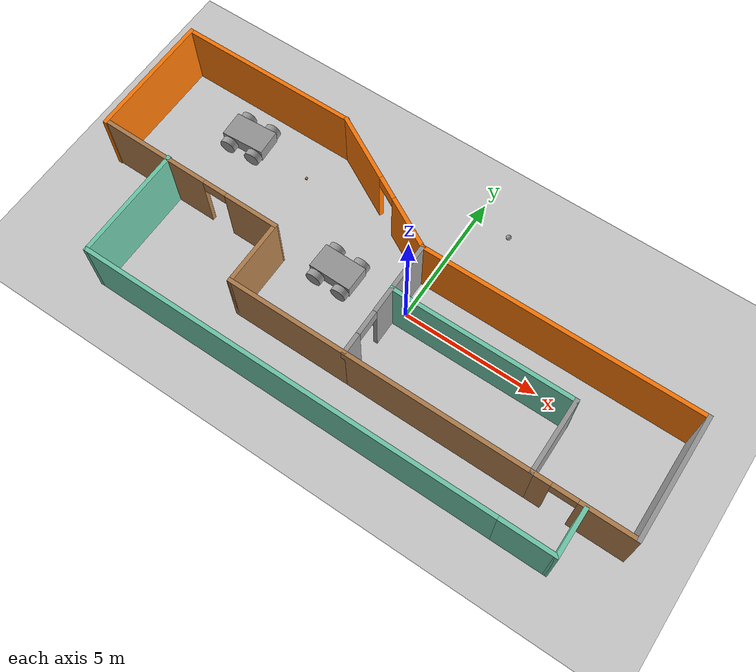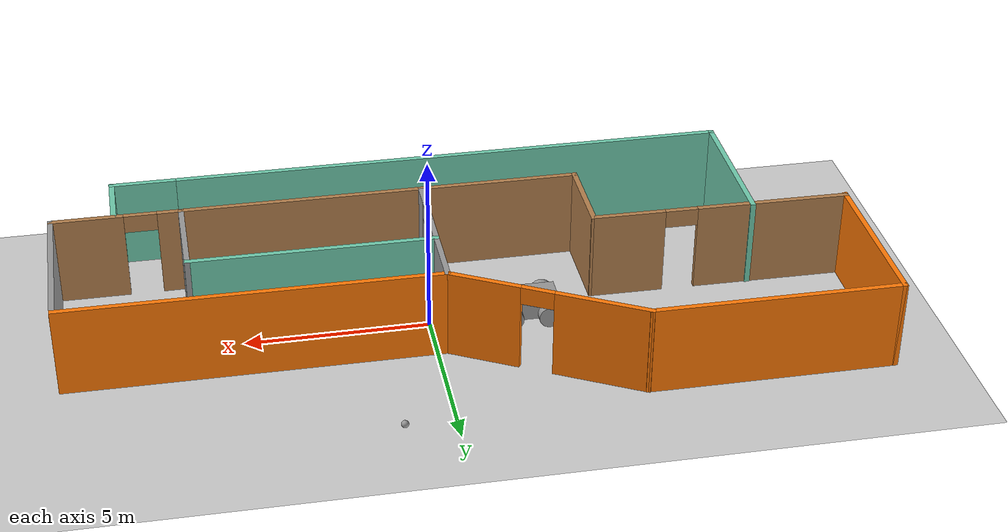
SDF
<sdf version="1.6">
 <world name="default">
  <plugin name="hello" filename="libhello.so"/>
  <light name="sun" type="directional">
   <pose>0 0 10 0 -0 0</pose>
   <diffuse>0.8 0.8 0.8 1</diffuse>
   <specular>0.2 0.2 0.2 1</specular>
   <attenuation>
    <range>1000</range>
    <constant>0.9</constant>
    <linear>0.01</linear>
    <quadratic>0.001</quadratic>
   </attenuation>
   <direction>-0.5 0.1 -0.9</direction>
  </light>
  <model name="ground_plane">
   <static>1</static>
   <link name="link">
    <collision name="collision">
     <geometry><plane><normal>0 0 1</normal><size>100 100</size></plane></geometry>
     <surface>
      <contact><collide_bitmask>65535</collide_bitmask></contact>
      <friction><ode><mu>100</mu><mu2>50</mu2></ode></friction>
     </surface>
    </collision>
    <visual name="visual">
     <cast_shadows>0</cast_shadows>
     <geometry><plane><normal>0 0 1</normal><size>100 100</size></plane></geometry>
     <material>
      <script><uri>file://media/materials/scripts/gazebo.material</uri><name>Gazebo/Grey</name></script>
     </material>
    </visual>
   </link>
  </model>
  <gravity>0 0 -9.8</gravity>
  <magnetic_field>6e-06 2.3e-05 -4.2e-05</magnetic_field>
  <atmosphere type="adiabatic"/>
  <physics name="default_physics" default="0" type="ode">
   <max_step_size>0.001</max_step_size>
   <real_time_factor>1</real_time_factor>
   <real_time_update_rate>1000</real_time_update_rate>
  </physics>
  <scene><ambient>0.4 0.4 0.4 1</ambient><background>0.7 0.7 0.7 1</background><shadows>1</shadows></scene>
  <spherical_coordinates>
   <surface_model>EARTH_WGS84</surface_model>
   <latitude_deg>0</latitude_deg>
   <longitude_deg>0</longitude_deg>
   <elevation>0</elevation>
   <heading_deg>0</heading_deg>
  </spherical_coordinates>
  <model name="mybuilding">
   <pose>-0.9582 -0.36188 0 0 -0 0</pose>
   <link name="Wall_0">
    <collision name="Wall_0_Collision">
     <geometry><box><size>4.75 0.15 2.5</size></box></geometry>
     <pose>0 0 1.25 0 -0 0</pose>
    </collision>
    <visual name="Wall_0_Visual">
     <pose>0 0 1.25 0 -0 0</pose>
     <geometry><box><size>4.75 0.15 2.5</size></box></geometry>
     <material>
      <script><uri>file://media/materials/scripts/gazebo.material</uri><name>Gazebo/Grey</name></script>
      <ambient>0.996078 0.47451 0.0196078 1</ambient>
     </material>
     <meta><layer>0</layer></meta>
    </visual>
    <pose>-10.7747 2.01571 0 0 0 -1.5708</pose>
   </link>
   <link name="Wall_1">
    <pose>-7.22475 -0.28429 0 0 0 -0.008617</pose>
    <visual name="Wall_1_Visual_0">
     <pose>-1.48771 0 1.25 0 -0 0</pose>
     <geometry><box><size>4.27457 0.15 2.5</size></box></geometry>
     <material>
      <script><uri>file://media/materials/scripts/gazebo.material</uri><name>Gazebo/Wood</name></script>
      <ambient>1 1 1 1</ambient>
     </material>
     <meta><layer>0</layer></meta>
    </visual>
    <collision name="Wall_1_Collision_0">
     <geometry><box><size>4.27457 0.15 2.5</size></box></geometry>
     <pose>-1.48771 0 1.25 0 -0 0</pose>
    </collision>
    <visual name="Wall_1_Visual_1">
     <pose>2.58729 0 1.25 0 -0 0</pose>
     <geometry><box><size>2.07543 0.15 2.5</size></box></geometry>
     <material>
      <script><uri>file://media/materials/scripts/gazebo.material</uri><name>Gazebo/Wood</name></script>
      <ambient>1 1 1 1</ambient>
     </material>
     <meta><layer>0</layer></meta>
    </visual>
    <collision name="Wall_1_Collision_1">
     <geometry><box><size>2.07543 0.15 2.5</size></box></geometry>
     <pose>2.58729 0 1.25 0 -0 0</pose>
    </collision>
    <visual name="Wall_1_Visual_2">
     <pose>1.09957 0 2.25 0 -0 0</pose>
     <geometry><box><size>0.9 0.15 0.5</size></box></geometry>
     <material>
      <script><uri>file://media/materials/scripts/gazebo.material</uri><name>Gazebo/Wood</name></script>
      <ambient>1 1 1 1</ambient>
     </material>
     <meta><layer>0</layer></meta>
    </visual>
    <collision name="Wall_1_Collision_2">
     <geometry><box><size>0.9 0.15 0.5</size></box></geometry>
     <pose>1.09957 0 2.25 0 -0 0</pose>
    </collision>
   </link>
   <link name="Wall_10">
    <collision name="Wall_10_Collision">
     <geometry><box><size>6.75 0.15 2.5</size></box></geometry>
     <pose>0 0 1.25 0 -0 0</pose>
    </collision>
    <visual name="Wall_10_Visual">
     <pose>0 0 1.25 0 -0 0</pose>
     <geometry><box><size>6.75 0.15 2.5</size></box></geometry>
     <material>
      <script><uri>file://media/materials/scripts/gazebo.material</uri><name>Gazebo/Wood</name></script>
      <ambient>1 1 1 1</ambient>
     </material>
     <meta><layer>0</layer></meta>
    </visual>
    <pose>3.97526 -2.66488 0 0 -0 0</pose>
   </link>
   <link name="Wall_11">
    <collision name="Wall_11_Collision">
     <geometry><box><size>2.75 0.15 2.5</size></box></geometry>
     <pose>0 0 1.25 0 -0 0</pose>
    </collision>
    <visual name="Wall_11_Visual">
     <pose>0 0 1.25 0 -0 0</pose>
     <geometry><box><size>2.75 0.15 2.5</size></box></geometry>
     <material>
      <script><uri>file://media/materials/scripts/gazebo.material</uri><name>Gazebo/Grey</name></script>
      <ambient>1 1 1 1</ambient>
     </material>
     <meta><layer>0</layer></meta>
    </visual>
    <pose>7.27525 -1.36488 0 0 -0 1.5708</pose>
   </link>
   <link name="Wall_12">
    <collision name="Wall_12_Collision">
     <geometry><box><size>6.75 0.15 2.5</size></box></geometry>
     <pose>0 0 1.25 0 -0 0</pose>
    </collision>
    <visual name="Wall_12_Visual">
     <pose>0 0 1.25 0 -0 0</pose>
     <geometry><box><size>6.75 0.15 2.5</size></box></geometry>
     <material>
      <script><uri>file://media/materials/scripts/gazebo.material</uri><name>Gazebo/Grey</name></script>
      <ambient>0.435294 0.796078 0.67451 1</ambient>
     </material>
     <meta><layer>0</layer></meta>
    </visual>
    <pose>3.97526 -0.064881 0 0 -0 3.14159</pose>
   </link>
   <link name="Wall_14">
    <collision name="Wall_14_Collision">
     <geometry><box><size>10.25 0.15 2.5</size></box></geometry>
     <pose>0 0 1.25 0 -0 0</pose>
    </collision>
    <visual name="Wall_14_Visual">
     <pose>0 0 1.25 0 -0 0</pose>
     <geometry><box><size>10.25 0.15 2.5</size></box></geometry>
     <material>
      <script><uri>file://media/materials/scripts/gazebo.material</uri><name>Gazebo/Grey</name></script>
      <ambient>0.996078 0.47451 0.0196078 1</ambient>
     </material>
     <meta><layer>0</layer></meta>
    </visual>
    <pose>5.72526 1.68512 0 0 -0 0</pose>
   </link>
   <link name="Wall_15">
    <collision name="Wall_15_Collision">
     <geometry><box><size>4.5 0.15 2.5</size></box></geometry>
     <pose>0 0 1.25 0 -0 0</pose>
    </collision>
    <visual name="Wall_15_Visual">
     <pose>0 0 1.25 0 -0 0</pose>
     <geometry><box><size>4.5 0.15 2.5</size></box></geometry>
     <material>
      <script><uri>file://media/materials/scripts/gazebo.material</uri><name>Gazebo/Grey</name></script>
      <ambient>1 1 1 1</ambient>
     </material>
     <meta><layer>0</layer></meta>
    </visual>
    <pose>10.7753 -0.489881 0 0 0 -1.5708</pose>
   </link>
   <link name="Wall_16">
    <pose>9.02525 -2.66488 0 0 -0 3.14159</pose>
    <visual name="Wall_16_Visual_0">
     <pose>-0.812242 0 1.25 0 -0 0</pose>
     <geometry><box><size>2.02552 0.15 2.5</size></box></geometry>
     <material>
      <script><uri>file://media/materials/scripts/gazebo.material</uri><name>Gazebo/Wood</name></script>
      <ambient>1 1 1 1</ambient>
     </material>
     <meta><layer>0</layer></meta>
    </visual>
    <collision name="Wall_16_Collision_0">
     <geometry><box><size>2.02552 0.15 2.5</size></box></geometry>
     <pose>-0.812242 0 1.25 0 -0 0</pose>
    </collision>
    <visual name="Wall_16_Visual_1">
     <pose>1.46276 0 1.25 0 -0 0</pose>
     <geometry><box><size>0.724483 0.15 2.5</size></box></geometry>
     <material>
      <script><uri>file://media/materials/scripts/gazebo.material</uri><name>Gazebo/Wood</name></script>
      <ambient>1 1 1 1</ambient>
     </material>
     <meta><layer>0</layer></meta>
    </visual>
    <collision name="Wall_16_Collision_1">
     <geometry><box><size>0.724483 0.15 2.5</size></box></geometry>
     <pose>1.46276 0 1.25 0 -0 0</pose>
    </collision>
    <visual name="Wall_16_Visual_2">
     <pose>0.650517 0 2.25 0 -0 0</pose>
     <geometry><box><size>0.9 0.15 0.5</size></box></geometry>
     <material>
      <script><uri>file://media/materials/scripts/gazebo.material</uri><name>Gazebo/Wood</name></script>
      <ambient>1 1 1 1</ambient>
     </material>
     <meta><layer>0</layer></meta>
    </visual>
    <collision name="Wall_16_Collision_2">
     <geometry><box><size>0.9 0.15 0.5</size></box></geometry>
     <pose>0.650517 0 2.25 0 -0 0</pose>
    </collision>
   </link>
   <link name="Wall_18">
    <collision name="Wall_18_Collision">
     <geometry><box><size>4.25 0.15 2.5</size></box></geometry>
     <pose>0 0 1.25 0 -0 0</pose>
    </collision>
    <visual name="Wall_18_Visual">
     <pose>0 0 1.25 0 -0 0</pose>
     <geometry><box><size>4.25 0.15 2.5</size></box></geometry>
     <material>
      <script><uri>file://media/materials/scripts/gazebo.material</uri><name>Gazebo/Grey</name></script>
      <ambient>0.435294 0.796078 0.67451 1</ambient>
     </material>
     <meta><layer>0</layer></meta>
    </visual>
    <pose>-8.11339 -2.29223 0 0 0 -1.5708</pose>
   </link>
   <link name="Wall_19">
    <collision name="Wall_19_Collision">
     <geometry><box><size>15.5 0.15 2.5</size></box></geometry>
     <pose>0 0 1.25 0 -0 0</pose>
    </collision>
    <visual name="Wall_19_Visual">
     <pose>0 0 1.25 0 -0 0</pose>
     <geometry><box><size>15.5 0.15 2.5</size></box></geometry>
     <material>
      <script><uri>file://media/materials/scripts/gazebo.material</uri><name>Gazebo/Grey</name></script>
      <ambient>0.435294 0.796078 0.67451 1</ambient>
     </material>
     <meta><layer>0</layer></meta>
    </visual>
    <pose>-0.438395 -4.34223 0 0 -0 0</pose>
   </link>
   <link name="Wall_2">
    <collision name="Wall_2_Collision">
     <geometry><box><size>2.5 0.15 2.5</size></box></geometry>
     <pose>0 0 1.25 0 -0 0</pose>
    </collision>
    <visual name="Wall_2_Visual">
     <pose>0 0 1.25 0 -0 0</pose>
     <geometry><box><size>2.5 0.15 2.5</size></box></geometry>
     <material>
      <script><uri>file://media/materials/scripts/gazebo.material</uri><name>Gazebo/Wood</name></script>
      <ambient>1 1 1 1</ambient>
     </material>
     <meta><layer>0</layer></meta>
    </visual>
    <pose>-3.67474 -1.48988 0 0 0 -1.5708</pose>
   </link>
   <link name="Wall_20">
    <collision name="Wall_20_Collision">
     <geometry><box><size>2 0.15 2.5</size></box></geometry>
     <pose>0 0 1.25 0 -0 0</pose>
    </collision>
    <visual name="Wall_20_Visual">
     <pose>0 0 1.25 0 -0 0</pose>
     <geometry><box><size>2 0.15 2.5</size></box></geometry>
     <material>
      <script><uri>file://media/materials/scripts/gazebo.material</uri><name>Gazebo/Grey</name></script>
      <ambient>0.435294 0.796078 0.67451 1</ambient>
     </material>
     <meta><layer>0</layer></meta>
    </visual>
    <pose>8.1616 -4.34223 0 0 -0 0</pose>
   </link>
   <link name="Wall_21">
    <collision name="Wall_21_Collision">
     <geometry><box><size>1.75 0.15 2.5</size></box></geometry>
     <pose>0 0 1.25 0 -0 0</pose>
    </collision>
    <visual name="Wall_21_Visual">
     <pose>0 0 1.25 0 -0 0</pose>
     <geometry><box><size>1.75 0.15 2.5</size></box></geometry>
     <material>
      <script><uri>file://media/materials/scripts/gazebo.material</uri><name>Gazebo/Grey</name></script>
      <ambient>0.435294 0.796078 0.67451 1</ambient>
     </material>
     <meta><layer>0</layer></meta>
    </visual>
    <pose>9.08661 -3.54223 0 0 -0 1.5708</pose>
   </link>
   <link name="Wall_3">
    <collision name="Wall_3_Collision">
     <geometry><box><size>4.5 0.15 2.5</size></box></geometry>
     <pose>0 0 1.25 0 -0 0</pose>
    </collision>
    <visual name="Wall_3_Visual">
     <pose>0 0 1.25 0 -0 0</pose>
     <geometry><box><size>4.5 0.15 2.5</size></box></geometry>
     <material>
      <script><uri>file://media/materials/scripts/gazebo.material</uri><name>Gazebo/Wood</name></script>
      <ambient>1 1 1 1</ambient>
     </material>
     <meta><layer>0</layer></meta>
    </visual>
    <pose>-1.49975 -2.66488 0 0 -0 0</pose>
   </link>
   <link name="Wall_4">
    <pose>0.675256 -0.489881 0 0 -0 1.5708</pose>
    <visual name="Wall_4_Visual_0">
     <pose>-1.83798 0 1.25 0 -0 0</pose>
     <geometry><box><size>0.824037 0.15 2.5</size></box></geometry>
     <material>
      <script><uri>file://media/materials/scripts/gazebo.material</uri><name>Gazebo/Grey</name></script>
      <ambient>1 1 1 1</ambient>
     </material>
     <meta><layer>0</layer></meta>
    </visual>
    <collision name="Wall_4_Collision_0">
     <geometry><box><size>0.824037 0.15 2.5</size></box></geometry>
     <pose>-1.83798 0 1.25 0 -0 0</pose>
    </collision>
    <visual name="Wall_4_Visual_1">
     <pose>0.862019 0 1.25 0 -0 0</pose>
     <geometry><box><size>2.77596 0.15 2.5</size></box></geometry>
     <material>
      <script><uri>file://media/materials/scripts/gazebo.material</uri><name>Gazebo/Grey</name></script>
      <ambient>1 1 1 1</ambient>
     </material>
     <meta><layer>0</layer></meta>
    </visual>
    <collision name="Wall_4_Collision_1">
     <geometry><box><size>2.77596 0.15 2.5</size></box></geometry>
     <pose>0.862019 0 1.25 0 -0 0</pose>
    </collision>
    <visual name="Wall_4_Visual_2">
     <pose>-0.975963 0 2.25 0 -0 0</pose>
     <geometry><box><size>0.9 0.15 0.5</size></box></geometry>
     <material>
      <script><uri>file://media/materials/scripts/gazebo.material</uri><name>Gazebo/Grey</name></script>
      <ambient>1 1 1 1</ambient>
     </material>
     <meta><layer>0</layer></meta>
    </visual>
    <collision name="Wall_4_Collision_2">
     <geometry><box><size>0.9 0.15 0.5</size></box></geometry>
     <pose>-0.975963 0 2.25 0 -0 0</pose>
    </collision>
   </link>
   <link name="Wall_5">
    <pose>-1.71902 3.00026 0 0 -0 2.6393</pose>
    <visual name="Wall_5_Visual_0">
     <pose>-1.76931 0 1.25 0 -0 0</pose>
     <geometry><box><size>2.07477 0.15 2.5</size></box></geometry>
     <material>
      <script><uri>file://media/materials/scripts/gazebo.material</uri><name>Gazebo/Grey</name></script>
      <ambient>0.996078 0.47451 0.0196078 1</ambient>
     </material>
     <meta><layer>0</layer></meta>
    </visual>
    <collision name="Wall_5_Collision_0">
     <geometry><box><size>2.07477 0.15 2.5</size></box></geometry>
     <pose>-1.76931 0 1.25 0 -0 0</pose>
    </collision>
    <visual name="Wall_5_Visual_1">
     <pose>1.48739 0 1.25 0 -0 0</pose>
     <geometry><box><size>2.63861 0.15 2.5</size></box></geometry>
     <material>
      <script><uri>file://media/materials/scripts/gazebo.material</uri><name>Gazebo/Grey</name></script>
      <ambient>0.996078 0.47451 0.0196078 1</ambient>
     </material>
     <meta><layer>0</layer></meta>
    </visual>
    <collision name="Wall_5_Collision_1">
     <geometry><box><size>2.63861 0.15 2.5</size></box></geometry>
     <pose>1.48739 0 1.25 0 -0 0</pose>
    </collision>
    <visual name="Wall_5_Visual_2">
     <pose>-0.281919 0 2.25 0 -0 0</pose>
     <geometry><box><size>0.9 0.15 0.5</size></box></geometry>
     <material>
      <script><uri>file://media/materials/scripts/gazebo.material</uri><name>Gazebo/Grey</name></script>
      <ambient>0.996078 0.47451 0.0196078 1</ambient>
     </material>
     <meta><layer>0</layer></meta>
    </visual>
    <collision name="Wall_5_Collision_2">
     <geometry><box><size>0.9 0.15 0.5</size></box></geometry>
     <pose>-0.281919 0 2.25 0 -0 0</pose>
    </collision>
   </link>
   <link name="Wall_8">
    <collision name="Wall_8_Collision">
     <geometry><box><size>6.81145 0.15 2.5</size></box></geometry>
     <pose>0 0 1.25 0 -0 0</pose>
    </collision>
    <visual name="Wall_8_Visual">
     <pose>0 0 1.25 0 -0 0</pose>
     <geometry><box><size>6.81145 0.15 2.5</size></box></geometry>
     <material>
      <script><uri>file://media/materials/scripts/gazebo.material</uri><name>Gazebo/Grey</name></script>
      <ambient>0.996078 0.47451 0.0196078 1</ambient>
     </material>
     <meta><layer>0</layer></meta>
    </visual>
    <pose>-7.44402 4.31555 0 0 0 -4.8e-05</pose>
   </link>
   <static>1</static>
  </model>
  <model name="wood_cube_7_5cm">
   <link name="link">
    <pose>0 0 0.0375 0 -0 0</pose>
    <inertial>
     <mass>0.2249</mass>
     <inertia>
      <ixx>0.000210844</ixx>
      <ixy>0</ixy>
      <ixz>0</ixz>
      <iyy>0.000210844</iyy>
      <iyz>0</iyz>
      <izz>0.000210844</izz>
     </inertia>
    </inertial>
    <collision name="collision">
     <geometry><box><size>0.075 0.075 0.075</size></box></geometry>
     <surface>
      <contact>
       <poissons_ratio>0.347</poissons_ratio>
       <elastic_modulus>8.8e+09</elastic_modulus>
       <ode><kp>100000</kp><kd>100</kd><max_vel>100</max_vel><min_depth>0.001</min_depth></ode>
      </contact>
      <friction>
       <torsional>
        <coefficient>1</coefficient>
        <use_patch_radius>0</use_patch_radius>
        <surface_radius>0.01</surface_radius>
       </torsional>
      </friction>
     </surface>
    </collision>
    <visual name="visual">
     <geometry><box><size>0.075 0.075 0.075</size></box></geometry>
     <material>
      <script><uri>file://media/materials/scripts/gazebo.material</uri><name>Gazebo/Wood</name></script>
     </material>
    </visual>
   </link>
   <pose>-5.82583 2.4228 -0.001005 0 -0 0</pose>
  </model>
  <model name="mycart">
   <link name="link_0">
    <pose>-0 0 0.08 0 -0 0</pose>
    <inertial>
     <mass>0.795795</mass>
     <inertia>
      <ixx>0.0778394</ixx>
      <ixy>0</ixy>
      <ixz>0</ixz>
      <iyy>0.191663</iyy>
      <iyz>0</iyz>
      <izz>0.234253</izz>
     </inertia>
    </inertial>
    <visual name="visual">
     <geometry><box><size>1.61999 0.952888 0.515523</size></box></geometry>
     <material>
      <lighting>1</lighting>
      <script><uri>file://media/materials/scripts/gazebo.material</uri><name>Gazebo/Grey</name></script>
      <shader type="pixel"><normal_map>__default__</normal_map></shader>
      <ambient>0.3 0.3 0.3 1</ambient>
      <diffuse>0.7 0.7 0.7 1</diffuse>
      <specular>0.01 0.01 0.01 1</specular>
      <emissive>0 0 0 1</emissive>
     </material>
    </visual>
    <collision name="collision">
     <geometry><box><size>1.61999 0.952888 0.515523</size></box></geometry>
     <surface>
      <friction>
       <ode><mu>1</mu><mu2>1</mu2><fdir1>0 0 0</fdir1><slip1>0</slip1><slip2>0</slip2></ode>
       <torsional>
        <coefficient>1</coefficient>
        <patch_radius>0</patch_radius>
        <surface_radius>0</surface_radius>
        <use_patch_radius>1</use_patch_radius>
        <ode><slip>0</slip></ode>
       </torsional>
      </friction>
      <bounce><restitution_coefficient>0</restitution_coefficient><threshold>1e+06</threshold></bounce>
      <contact>
       <collide_without_contact>0</collide_without_contact>
       <collide_without_contact_bitmask>1</collide_without_contact_bitmask>
       <collide_bitmask>1</collide_bitmask>
       <ode>
        <soft_cfm>0</soft_cfm>
        <soft_erp>0.2</soft_erp>
        <kp>1e+13</kp>
        <kd>1</kd>
        <max_vel>0.01</max_vel>
        <min_depth>0</min_depth>
       </ode>
       <bullet>
        <split_impulse>1</split_impulse>
        <split_impulse_penetration_threshold>-0.01</split_impulse_penetration_threshold>
        <soft_cfm>0</soft_cfm>
        <soft_erp>0.2</soft_erp>
        <kp>1e+13</kp>
        <kd>1</kd>
       </bullet>
      </contact>
     </surface>
    </collision>
   </link>
   <link name="link_1">
    <pose>0.509994 -0.601473 -0.02 1.5707 -0 0</pose>
    <inertial>
     <mass>1</mass>
     <inertia><ixx>0.145833</ixx><ixy>0</ixy><ixz>0</ixz><iyy>0.145833</iyy><iyz>0</iyz><izz>0.125</izz></inertia>
    </inertial>
    <visual name="visual">
     <geometry><cylinder><radius>0.3</radius><length>0.25</length></cylinder></geometry>
     <material>
      <lighting>1</lighting>
      <script><uri>file://media/materials/scripts/gazebo.material</uri><name>Gazebo/Grey</name></script>
      <shader type="pixel"><normal_map>__default__</normal_map></shader>
      <ambient>0.3 0.3 0.3 1</ambient>
      <diffuse>0.7 0.7 0.7 1</diffuse>
      <specular>0.01 0.01 0.01 1</specular>
      <emissive>0 0 0 1</emissive>
     </material>
    </visual>
    <collision name="collision">
     <geometry><cylinder><radius>0.3</radius><length>0.25</length></cylinder></geometry>
     <surface>
      <friction>
       <ode><mu>1</mu><mu2>1</mu2><fdir1>0 0 0</fdir1><slip1>0</slip1><slip2>0</slip2></ode>
       <torsional>
        <coefficient>1</coefficient>
        <patch_radius>0</patch_radius>
        <surface_radius>0</surface_radius>
        <use_patch_radius>1</use_patch_radius>
        <ode><slip>0</slip></ode>
       </torsional>
      </friction>
      <bounce><restitution_coefficient>0</restitution_coefficient><threshold>1e+06</threshold></bounce>
      <contact>
       <collide_without_contact>0</collide_without_contact>
       <collide_without_contact_bitmask>1</collide_without_contact_bitmask>
       <collide_bitmask>1</collide_bitmask>
       <ode>
        <soft_cfm>0</soft_cfm>
        <soft_erp>0.2</soft_erp>
        <kp>1e+13</kp>
        <kd>1</kd>
        <max_vel>0.01</max_vel>
        <min_depth>0</min_depth>
       </ode>
       <bullet>
        <split_impulse>1</split_impulse>
        <split_impulse_penetration_threshold>-0.01</split_impulse_penetration_threshold>
        <soft_cfm>0</soft_cfm>
        <soft_erp>0.2</soft_erp>
        <kp>1e+13</kp>
        <kd>1</kd>
       </bullet>
      </contact>
     </surface>
    </collision>
   </link>
   <link name="link_1_clone">
    <pose>-0.509994 -0.601473 -0.02 1.5707 -0 0</pose>
    <inertial>
     <mass>1</mass>
     <inertia><ixx>0.145833</ixx><ixy>0</ixy><ixz>0</ixz><iyy>0.145833</iyy><iyz>0</iyz><izz>0.125</izz></inertia>
    </inertial>
    <visual name="visual">
     <geometry><cylinder><radius>0.3</radius><length>0.25</length></cylinder></geometry>
     <material>
      <lighting>1</lighting>
      <script><uri>file://media/materials/scripts/gazebo.material</uri><name>Gazebo/Grey</name></script>
      <shader type="pixel"><normal_map>__default__</normal_map></shader>
      <ambient>0.3 0.3 0.3 1</ambient>
      <diffuse>0.7 0.7 0.7 1</diffuse>
      <specular>0.01 0.01 0.01 1</specular>
      <emissive>0 0 0 1</emissive>
     </material>
    </visual>
    <collision name="collision">
     <geometry><cylinder><radius>0.3</radius><length>0.25</length></cylinder></geometry>
     <surface>
      <friction>
       <ode><mu>1</mu><mu2>1</mu2><fdir1>0 0 0</fdir1><slip1>0</slip1><slip2>0</slip2></ode>
       <torsional>
        <coefficient>1</coefficient>
        <patch_radius>0</patch_radius>
        <surface_radius>0</surface_radius>
        <use_patch_radius>1</use_patch_radius>
        <ode><slip>0</slip></ode>
       </torsional>
      </friction>
      <bounce><restitution_coefficient>0</restitution_coefficient><threshold>1e+06</threshold></bounce>
      <contact>
       <collide_without_contact>0</collide_without_contact>
       <collide_without_contact_bitmask>1</collide_without_contact_bitmask>
       <collide_bitmask>1</collide_bitmask>
       <ode>
        <soft_cfm>0</soft_cfm>
        <soft_erp>0.2</soft_erp>
        <kp>1e+13</kp>
        <kd>1</kd>
        <max_vel>0.01</max_vel>
        <min_depth>0</min_depth>
       </ode>
       <bullet>
        <split_impulse>1</split_impulse>
        <split_impulse_penetration_threshold>-0.01</split_impulse_penetration_threshold>
        <soft_cfm>0</soft_cfm>
        <soft_erp>0.2</soft_erp>
        <kp>1e+13</kp>
        <kd>1</kd>
       </bullet>
      </contact>
     </surface>
    </collision>
   </link>
   <link name="link_1_clone_0">
    <pose>-0.509994 0.601473 -0.02 1.5707 -0 0</pose>
    <inertial>
     <mass>1</mass>
     <inertia><ixx>0.145833</ixx><ixy>0</ixy><ixz>0</ixz><iyy>0.145833</iyy><iyz>0</iyz><izz>0.125</izz></inertia>
    </inertial>
    <visual name="visual">
     <geometry><cylinder><radius>0.3</radius><length>0.25</length></cylinder></geometry>
     <material>
      <lighting>1</lighting>
      <script><uri>file://media/materials/scripts/gazebo.material</uri><name>Gazebo/Grey</name></script>
      <shader type="pixel"><normal_map>__default__</normal_map></shader>
      <ambient>0.3 0.3 0.3 1</ambient>
      <diffuse>0.7 0.7 0.7 1</diffuse>
      <specular>0.01 0.01 0.01 1</specular>
      <emissive>0 0 0 1</emissive>
     </material>
    </visual>
    <collision name="collision">
     <geometry><cylinder><radius>0.3</radius><length>0.25</length></cylinder></geometry>
     <surface>
      <friction>
       <ode><mu>1</mu><mu2>1</mu2><fdir1>0 0 0</fdir1><slip1>0</slip1><slip2>0</slip2></ode>
       <torsional>
        <coefficient>1</coefficient>
        <patch_radius>0</patch_radius>
        <surface_radius>0</surface_radius>
        <use_patch_radius>1</use_patch_radius>
        <ode><slip>0</slip></ode>
       </torsional>
      </friction>
      <bounce><restitution_coefficient>0</restitution_coefficient><threshold>1e+06</threshold></bounce>
      <contact>
       <collide_without_contact>0</collide_without_contact>
       <collide_without_contact_bitmask>1</collide_without_contact_bitmask>
       <collide_bitmask>1</collide_bitmask>
       <ode>
        <soft_cfm>0</soft_cfm>
        <soft_erp>0.2</soft_erp>
        <kp>1e+13</kp>
        <kd>1</kd>
        <max_vel>0.01</max_vel>
        <min_depth>0</min_depth>
       </ode>
       <bullet>
        <split_impulse>1</split_impulse>
        <split_impulse_penetration_threshold>-0.01</split_impulse_penetration_threshold>
        <soft_cfm>0</soft_cfm>
        <soft_erp>0.2</soft_erp>
        <kp>1e+13</kp>
        <kd>1</kd>
       </bullet>
      </contact>
     </surface>
    </collision>
   </link>
   <link name="link_1_clone_1">
    <pose>0.509994 0.601473 -0.02 1.5707 -0 0</pose>
    <inertial>
     <mass>1</mass>
     <inertia><ixx>0.145833</ixx><ixy>0</ixy><ixz>0</ixz><iyy>0.145833</iyy><iyz>0</iyz><izz>0.125</izz></inertia>
    </inertial>
    <visual name="visual">
     <geometry><cylinder><radius>0.3</radius><length>0.25</length></cylinder></geometry>
     <material>
      <lighting>1</lighting>
      <script><uri>file://media/materials/scripts/gazebo.material</uri><name>Gazebo/Grey</name></script>
      <shader type="pixel"><normal_map>__default__</normal_map></shader>
      <ambient>0.3 0.3 0.3 1</ambient>
      <diffuse>0.7 0.7 0.7 1</diffuse>
      <specular>0.01 0.01 0.01 1</specular>
      <emissive>0 0 0 1</emissive>
     </material>
    </visual>
    <collision name="collision">
     <geometry><cylinder><radius>0.3</radius><length>0.25</length></cylinder></geometry>
     <surface>
      <friction>
       <ode><mu>1</mu><mu2>1</mu2><fdir1>0 0 0</fdir1><slip1>0</slip1><slip2>0</slip2></ode>
       <torsional>
        <coefficient>1</coefficient>
        <patch_radius>0</patch_radius>
        <surface_radius>0</surface_radius>
        <use_patch_radius>1</use_patch_radius>
        <ode><slip>0</slip></ode>
       </torsional>
      </friction>
      <bounce><restitution_coefficient>0</restitution_coefficient><threshold>1e+06</threshold></bounce>
      <contact>
       <collide_without_contact>0</collide_without_contact>
       <collide_without_contact_bitmask>1</collide_without_contact_bitmask>
       <collide_bitmask>1</collide_bitmask>
       <ode>
        <soft_cfm>0</soft_cfm>
        <soft_erp>0.2</soft_erp>
        <kp>1e+13</kp>
        <kd>1</kd>
        <max_vel>0.01</max_vel>
        <min_depth>0</min_depth>
       </ode>
       <bullet>
        <split_impulse>1</split_impulse>
        <split_impulse_penetration_threshold>-0.01</split_impulse_penetration_threshold>
        <soft_cfm>0</soft_cfm>
        <soft_erp>0.2</soft_erp>
        <kp>1e+13</kp>
        <kd>1</kd>
       </bullet>
      </contact>
     </surface>
    </collision>
   </link>
   <joint name="link_0_JOINT_0" type="revolute">
    <parent>link_0</parent>
    <child>link_1_clone_1</child>
    <axis>
     <xyz>0 0 1</xyz>
     <use_parent_model_frame>0</use_parent_model_frame>
     <limit>
      <lower>-1.79769e+308</lower>
      <upper>1.79769e+308</upper>
      <effort>-1</effort>
      <velocity>-1</velocity>
     </limit>
     <dynamics>
      <spring_reference>0</spring_reference>
      <spring_stiffness>0</spring_stiffness>
      <damping>0</damping>
     </dynamics>
    </axis>
    <physics>
     <ode><limit><cfm>0</cfm><erp>0.2</erp></limit><suspension><cfm>0</cfm><erp>0.2</erp></suspension></ode>
    </physics>
   </joint>
   <joint name="link_0_JOINT_1" type="revolute">
    <parent>link_0</parent>
    <child>link_1_clone_0</child>
    <axis>
     <xyz>0 0 1</xyz>
     <use_parent_model_frame>0</use_parent_model_frame>
     <limit>
      <lower>-1.79769e+308</lower>
      <upper>1.79769e+308</upper>
      <effort>-1</effort>
      <velocity>-1</velocity>
     </limit>
     <dynamics>
      <spring_reference>0</spring_reference>
      <spring_stiffness>0</spring_stiffness>
      <damping>0</damping>
     </dynamics>
    </axis>
    <physics>
     <ode><limit><cfm>0</cfm><erp>0.2</erp></limit><suspension><cfm>0</cfm><erp>0.2</erp></suspension></ode>
    </physics>
   </joint>
   <joint name="link_0_JOINT_2" type="revolute">
    <parent>link_0</parent>
    <child>link_1_clone</child>
    <axis>
     <xyz>0 0 1</xyz>
     <use_parent_model_frame>0</use_parent_model_frame>
     <limit>
      <lower>-1.79769e+308</lower>
      <upper>1.79769e+308</upper>
      <effort>-1</effort>
      <velocity>-1</velocity>
     </limit>
     <dynamics>
      <spring_reference>0</spring_reference>
      <spring_stiffness>0</spring_stiffness>
      <damping>0</damping>
     </dynamics>
    </axis>
    <physics>
     <ode><limit><cfm>0</cfm><erp>0.2</erp></limit><suspension><cfm>0</cfm><erp>0.2</erp></suspension></ode>
    </physics>
   </joint>
   <joint name="link_0_JOINT_3" type="revolute">
    <parent>link_0</parent>
    <child>link_1</child>
    <axis>
     <xyz>0 0 1</xyz>
     <use_parent_model_frame>0</use_parent_model_frame>
     <limit>
      <lower>-1.79769e+308</lower>
      <upper>1.79769e+308</upper>
      <effort>-1</effort>
      <velocity>-1</velocity>
     </limit>
     <dynamics>
      <spring_reference>0</spring_reference>
      <spring_stiffness>0</spring_stiffness>
      <damping>0</damping>
     </dynamics>
    </axis>
    <physics>
     <ode><limit><cfm>0</cfm><erp>0.2</erp></limit><suspension><cfm>0</cfm><erp>0.2</erp></suspension></ode>
    </physics>
   </joint>
   <static>0</static>
   <pose>-8.3531 2.53737 0.320012 0 -0 0.054881</pose>
  </model>
  <model name="mycart_0">
   <link name="link_0">
    <pose>-0 0 0.08 0 -0 0</pose>
    <inertial>
     <mass>0.795795</mass>
     <inertia>
      <ixx>0.0778394</ixx>
      <ixy>0</ixy>
      <ixz>0</ixz>
      <iyy>0.191663</iyy>
      <iyz>0</iyz>
      <izz>0.234253</izz>
     </inertia>
    </inertial>
    <visual name="visual">
     <geometry><box><size>1.61999 0.952888 0.515523</size></box></geometry>
     <material>
      <lighting>1</lighting>
      <script><uri>file://media/materials/scripts/gazebo.material</uri><name>Gazebo/Grey</name></script>
      <shader type="pixel"><normal_map>__default__</normal_map></shader>
      <ambient>0.3 0.3 0.3 1</ambient>
      <diffuse>0.7 0.7 0.7 1</diffuse>
      <specular>0.01 0.01 0.01 1</specular>
      <emissive>0 0 0 1</emissive>
     </material>
    </visual>
    <collision name="collision">
     <geometry><box><size>1.61999 0.952888 0.515523</size></box></geometry>
     <surface>
      <friction>
       <ode><mu>1</mu><mu2>1</mu2><fdir1>0 0 0</fdir1><slip1>0</slip1><slip2>0</slip2></ode>
       <torsional>
        <coefficient>1</coefficient>
        <patch_radius>0</patch_radius>
        <surface_radius>0</surface_radius>
        <use_patch_radius>1</use_patch_radius>
        <ode><slip>0</slip></ode>
       </torsional>
      </friction>
      <bounce><restitution_coefficient>0</restitution_coefficient><threshold>1e+06</threshold></bounce>
      <contact>
       <collide_without_contact>0</collide_without_contact>
       <collide_without_contact_bitmask>1</collide_without_contact_bitmask>
       <collide_bitmask>1</collide_bitmask>
       <ode>
        <soft_cfm>0</soft_cfm>
        <soft_erp>0.2</soft_erp>
        <kp>1e+13</kp>
        <kd>1</kd>
        <max_vel>0.01</max_vel>
        <min_depth>0</min_depth>
       </ode>
       <bullet>
        <split_impulse>1</split_impulse>
        <split_impulse_penetration_threshold>-0.01</split_impulse_penetration_threshold>
        <soft_cfm>0</soft_cfm>
        <soft_erp>0.2</soft_erp>
        <kp>1e+13</kp>
        <kd>1</kd>
       </bullet>
      </contact>
     </surface>
    </collision>
   </link>
   <link name="link_1">
    <pose>0.509994 -0.601473 -0.02 1.5707 -0 0</pose>
    <inertial>
     <mass>1</mass>
     <inertia><ixx>0.145833</ixx><ixy>0</ixy><ixz>0</ixz><iyy>0.145833</iyy><iyz>0</iyz><izz>0.125</izz></inertia>
    </inertial>
    <visual name="visual">
     <geometry><cylinder><radius>0.3</radius><length>0.25</length></cylinder></geometry>
     <material>
      <lighting>1</lighting>
      <script><uri>file://media/materials/scripts/gazebo.material</uri><name>Gazebo/Grey</name></script>
      <shader type="pixel"><normal_map>__default__</normal_map></shader>
      <ambient>0.3 0.3 0.3 1</ambient>
      <diffuse>0.7 0.7 0.7 1</diffuse>
      <specular>0.01 0.01 0.01 1</specular>
      <emissive>0 0 0 1</emissive>
     </material>
    </visual>
    <collision name="collision">
     <geometry><cylinder><radius>0.3</radius><length>0.25</length></cylinder></geometry>
     <surface>
      <friction>
       <ode><mu>1</mu><mu2>1</mu2><fdir1>0 0 0</fdir1><slip1>0</slip1><slip2>0</slip2></ode>
       <torsional>
        <coefficient>1</coefficient>
        <patch_radius>0</patch_radius>
        <surface_radius>0</surface_radius>
        <use_patch_radius>1</use_patch_radius>
        <ode><slip>0</slip></ode>
       </torsional>
      </friction>
      <bounce><restitution_coefficient>0</restitution_coefficient><threshold>1e+06</threshold></bounce>
      <contact>
       <collide_without_contact>0</collide_without_contact>
       <collide_without_contact_bitmask>1</collide_without_contact_bitmask>
       <collide_bitmask>1</collide_bitmask>
       <ode>
        <soft_cfm>0</soft_cfm>
        <soft_erp>0.2</soft_erp>
        <kp>1e+13</kp>
        <kd>1</kd>
        <max_vel>0.01</max_vel>
        <min_depth>0</min_depth>
       </ode>
       <bullet>
        <split_impulse>1</split_impulse>
        <split_impulse_penetration_threshold>-0.01</split_impulse_penetration_threshold>
        <soft_cfm>0</soft_cfm>
        <soft_erp>0.2</soft_erp>
        <kp>1e+13</kp>
        <kd>1</kd>
       </bullet>
      </contact>
     </surface>
    </collision>
   </link>
   <link name="link_1_clone">
    <pose>-0.509994 -0.601473 -0.02 1.5707 -0 0</pose>
    <inertial>
     <mass>1</mass>
     <inertia><ixx>0.145833</ixx><ixy>0</ixy><ixz>0</ixz><iyy>0.145833</iyy><iyz>0</iyz><izz>0.125</izz></inertia>
    </inertial>
    <visual name="visual">
     <geometry><cylinder><radius>0.3</radius><length>0.25</length></cylinder></geometry>
     <material>
      <lighting>1</lighting>
      <script><uri>file://media/materials/scripts/gazebo.material</uri><name>Gazebo/Grey</name></script>
      <shader type="pixel"><normal_map>__default__</normal_map></shader>
      <ambient>0.3 0.3 0.3 1</ambient>
      <diffuse>0.7 0.7 0.7 1</diffuse>
      <specular>0.01 0.01 0.01 1</specular>
      <emissive>0 0 0 1</emissive>
     </material>
    </visual>
    <collision name="collision">
     <geometry><cylinder><radius>0.3</radius><length>0.25</length></cylinder></geometry>
     <surface>
      <friction>
       <ode><mu>1</mu><mu2>1</mu2><fdir1>0 0 0</fdir1><slip1>0</slip1><slip2>0</slip2></ode>
       <torsional>
        <coefficient>1</coefficient>
        <patch_radius>0</patch_radius>
        <surface_radius>0</surface_radius>
        <use_patch_radius>1</use_patch_radius>
        <ode><slip>0</slip></ode>
       </torsional>
      </friction>
      <bounce><restitution_coefficient>0</restitution_coefficient><threshold>1e+06</threshold></bounce>
      <contact>
       <collide_without_contact>0</collide_without_contact>
       <collide_without_contact_bitmask>1</collide_without_contact_bitmask>
       <collide_bitmask>1</collide_bitmask>
       <ode>
        <soft_cfm>0</soft_cfm>
        <soft_erp>0.2</soft_erp>
        <kp>1e+13</kp>
        <kd>1</kd>
        <max_vel>0.01</max_vel>
        <min_depth>0</min_depth>
       </ode>
       <bullet>
        <split_impulse>1</split_impulse>
        <split_impulse_penetration_threshold>-0.01</split_impulse_penetration_threshold>
        <soft_cfm>0</soft_cfm>
        <soft_erp>0.2</soft_erp>
        <kp>1e+13</kp>
        <kd>1</kd>
       </bullet>
      </contact>
     </surface>
    </collision>
   </link>
   <link name="link_1_clone_0">
    <pose>-0.509994 0.601473 -0.02 1.5707 -0 0</pose>
    <inertial>
     <mass>1</mass>
     <inertia><ixx>0.145833</ixx><ixy>0</ixy><ixz>0</ixz><iyy>0.145833</iyy><iyz>0</iyz><izz>0.125</izz></inertia>
    </inertial>
    <visual name="visual">
     <geometry><cylinder><radius>0.3</radius><length>0.25</length></cylinder></geometry>
     <material>
      <lighting>1</lighting>
      <script><uri>file://media/materials/scripts/gazebo.material</uri><name>Gazebo/Grey</name></script>
      <shader type="pixel"><normal_map>__default__</normal_map></shader>
      <ambient>0.3 0.3 0.3 1</ambient>
      <diffuse>0.7 0.7 0.7 1</diffuse>
      <specular>0.01 0.01 0.01 1</specular>
      <emissive>0 0 0 1</emissive>
     </material>
    </visual>
    <collision name="collision">
     <geometry><cylinder><radius>0.3</radius><length>0.25</length></cylinder></geometry>
     <surface>
      <friction>
       <ode><mu>1</mu><mu2>1</mu2><fdir1>0 0 0</fdir1><slip1>0</slip1><slip2>0</slip2></ode>
       <torsional>
        <coefficient>1</coefficient>
        <patch_radius>0</patch_radius>
        <surface_radius>0</surface_radius>
        <use_patch_radius>1</use_patch_radius>
        <ode><slip>0</slip></ode>
       </torsional>
      </friction>
      <bounce><restitution_coefficient>0</restitution_coefficient><threshold>1e+06</threshold></bounce>
      <contact>
       <collide_without_contact>0</collide_without_contact>
       <collide_without_contact_bitmask>1</collide_without_contact_bitmask>
       <collide_bitmask>1</collide_bitmask>
       <ode>
        <soft_cfm>0</soft_cfm>
        <soft_erp>0.2</soft_erp>
        <kp>1e+13</kp>
        <kd>1</kd>
        <max_vel>0.01</max_vel>
        <min_depth>0</min_depth>
       </ode>
       <bullet>
        <split_impulse>1</split_impulse>
        <split_impulse_penetration_threshold>-0.01</split_impulse_penetration_threshold>
        <soft_cfm>0</soft_cfm>
        <soft_erp>0.2</soft_erp>
        <kp>1e+13</kp>
        <kd>1</kd>
       </bullet>
      </contact>
     </surface>
    </collision>
   </link>
   <link name="link_1_clone_1">
    <pose>0.509994 0.601473 -0.02 1.5707 -0 0</pose>
    <inertial>
     <mass>1</mass>
     <inertia><ixx>0.145833</ixx><ixy>0</ixy><ixz>0</ixz><iyy>0.145833</iyy><iyz>0</iyz><izz>0.125</izz></inertia>
    </inertial>
    <visual name="visual">
     <geometry><cylinder><radius>0.3</radius><length>0.25</length></cylinder></geometry>
     <material>
      <lighting>1</lighting>
      <script><uri>file://media/materials/scripts/gazebo.material</uri><name>Gazebo/Grey</name></script>
      <shader type="pixel"><normal_map>__default__</normal_map></shader>
      <ambient>0.3 0.3 0.3 1</ambient>
      <diffuse>0.7 0.7 0.7 1</diffuse>
      <specular>0.01 0.01 0.01 1</specular>
      <emissive>0 0 0 1</emissive>
     </material>
    </visual>
    <collision name="collision">
     <geometry><cylinder><radius>0.3</radius><length>0.25</length></cylinder></geometry>
     <surface>
      <friction>
       <ode><mu>1</mu><mu2>1</mu2><fdir1>0 0 0</fdir1><slip1>0</slip1><slip2>0</slip2></ode>
       <torsional>
        <coefficient>1</coefficient>
        <patch_radius>0</patch_radius>
        <surface_radius>0</surface_radius>
        <use_patch_radius>1</use_patch_radius>
        <ode><slip>0</slip></ode>
       </torsional>
      </friction>
      <bounce><restitution_coefficient>0</restitution_coefficient><threshold>1e+06</threshold></bounce>
      <contact>
       <collide_without_contact>0</collide_without_contact>
       <collide_without_contact_bitmask>1</collide_without_contact_bitmask>
       <collide_bitmask>1</collide_bitmask>
       <ode>
        <soft_cfm>0</soft_cfm>
        <soft_erp>0.2</soft_erp>
        <kp>1e+13</kp>
        <kd>1</kd>
        <max_vel>0.01</max_vel>
        <min_depth>0</min_depth>
       </ode>
       <bullet>
        <split_impulse>1</split_impulse>
        <split_impulse_penetration_threshold>-0.01</split_impulse_penetration_threshold>
        <soft_cfm>0</soft_cfm>
        <soft_erp>0.2</soft_erp>
        <kp>1e+13</kp>
        <kd>1</kd>
       </bullet>
      </contact>
     </surface>
    </collision>
   </link>
   <joint name="link_0_JOINT_0" type="revolute">
    <parent>link_0</parent>
    <child>link_1_clone_1</child>
    <axis>
     <xyz>0 0 1</xyz>
     <use_parent_model_frame>0</use_parent_model_frame>
     <limit>
      <lower>-1.79769e+308</lower>
      <upper>1.79769e+308</upper>
      <effort>-1</effort>
      <velocity>-1</velocity>
     </limit>
     <dynamics>
      <spring_reference>0</spring_reference>
      <spring_stiffness>0</spring_stiffness>
      <damping>0</damping>
     </dynamics>
    </axis>
    <physics>
     <ode><limit><cfm>0</cfm><erp>0.2</erp></limit><suspension><cfm>0</cfm><erp>0.2</erp></suspension></ode>
    </physics>
   </joint>
   <joint name="link_0_JOINT_1" type="revolute">
    <parent>link_0</parent>
    <child>link_1_clone_0</child>
    <axis>
     <xyz>0 0 1</xyz>
     <use_parent_model_frame>0</use_parent_model_frame>
     <limit>
      <lower>-1.79769e+308</lower>
      <upper>1.79769e+308</upper>
      <effort>-1</effort>
      <velocity>-1</velocity>
     </limit>
     <dynamics>
      <spring_reference>0</spring_reference>
      <spring_stiffness>0</spring_stiffness>
      <damping>0</damping>
     </dynamics>
    </axis>
    <physics>
     <ode><limit><cfm>0</cfm><erp>0.2</erp></limit><suspension><cfm>0</cfm><erp>0.2</erp></suspension></ode>
    </physics>
   </joint>
   <joint name="link_0_JOINT_2" type="revolute">
    <parent>link_0</parent>
    <child>link_1_clone</child>
    <axis>
     <xyz>0 0 1</xyz>
     <use_parent_model_frame>0</use_parent_model_frame>
     <limit>
      <lower>-1.79769e+308</lower>
      <upper>1.79769e+308</upper>
      <effort>-1</effort>
      <velocity>-1</velocity>
     </limit>
     <dynamics>
      <spring_reference>0</spring_reference>
      <spring_stiffness>0</spring_stiffness>
      <damping>0</damping>
     </dynamics>
    </axis>
    <physics>
     <ode><limit><cfm>0</cfm><erp>0.2</erp></limit><suspension><cfm>0</cfm><erp>0.2</erp></suspension></ode>
    </physics>
   </joint>
   <joint name="link_0_JOINT_3" type="revolute">
    <parent>link_0</parent>
    <child>link_1</child>
    <axis>
     <xyz>0 0 1</xyz>
     <use_parent_model_frame>0</use_parent_model_frame>
     <limit>
      <lower>-1.79769e+308</lower>
      <upper>1.79769e+308</upper>
      <effort>-1</effort>
      <velocity>-1</velocity>
     </limit>
     <dynamics>
      <spring_reference>0</spring_reference>
      <spring_stiffness>0</spring_stiffness>
      <damping>0</damping>
     </dynamics>
    </axis>
    <physics>
     <ode><limit><cfm>0</cfm><erp>0.2</erp></limit><suspension><cfm>0</cfm><erp>0.2</erp></suspension></ode>
    </physics>
   </joint>
   <static>0</static>
   <pose>-2.7049 -0.061191 0.32001 0 -5e-06 -0.015234</pose>
  </model>
  <model name="my_robot">
   <pose>2.99998 -2.00864 0.1 3e-06 0.000393 0.002618</pose>
   <scale>1 1 1</scale>
   <link name="left_wheel">
    <pose>2.99958 -1.85864 0.1 4e-06 0.001233 0.002618</pose>
    <velocity>0.00054 0.00074 0.001002 -0.007402 0.005399 2e-06</velocity>
    <acceleration>0.047479 1.54986 2.00475 -2.22852 0.473821 -0.000536</acceleration>
    <wrench>0.237395 7.74929 10.0238 0 -0 0</wrench>
   </link>
   <link name="right_wheel">
    <pose>3.00037 -2.15864 0.1 4e-06 0.002119 0.002618</pose>
    <velocity>0.00054 0.00075 0.00347 -0.007503 0.005404 2e-06</velocity>
    <acceleration>0.047296 1.56991 6.93934 -2.42929 0.478954 -0.000901</acceleration>
    <wrench>0.236482 7.84958 34.6967 0 -0 0</wrench>
   </link>
   <link name="robot_footprint">
    <pose>2.99998 -2.00864 0.1 3e-06 0.000393 0.002618</pose>
    <velocity>0.00054 0.000744 0.002232 -0.007628 0.005398 2e-06</velocity>
    <acceleration>0.047371 1.5589 4.46384 -2.67283 0.471103 4.8e-05</acceleration>
    <wrench>0.715303 23.5394 67.404 0 -0 0</wrench>
   </link>
  </model>
  <model name="my_ball">
   <link name="link_0">
    <inertial>
     <mass>1</mass>
     <inertia><ixx>0.1</ixx><ixy>0</ixy><ixz>0</ixz><iyy>0.1</iyy><iyz>0</iyz><izz>0.1</izz></inertia>
    </inertial>
    <visual name="visual">
     <geometry><sphere><radius>0.1</radius></sphere></geometry>
     <material>
      <lighting>1</lighting>
      <script><uri>file://media/materials/scripts/gazebo.material</uri><name>Gazebo/Grey</name></script>
      <shader type="pixel"><normal_map>__default__</normal_map></shader>
      <ambient>1 1 1 1</ambient>
      <diffuse>1 1 1 1</diffuse>
      <specular>1 1 1 1</specular>
      <emissive>1 1 1 1</emissive>
     </material>
    </visual>
    <collision name="collision">
     <geometry><sphere><radius>0.1</radius></sphere></geometry>
     <surface>
      <friction>
       <ode><mu>1</mu><mu2>1</mu2><fdir1>0 0 0</fdir1><slip1>0</slip1><slip2>0</slip2></ode>
       <torsional>
        <coefficient>1</coefficient>
        <patch_radius>0</patch_radius>
        <surface_radius>0</surface_radius>
        <use_patch_radius>1</use_patch_radius>
        <ode><slip>0</slip></ode>
       </torsional>
      </friction>
      <bounce><restitution_coefficient>0</restitution_coefficient><threshold>1e+06</threshold></bounce>
      <contact>
       <collide_without_contact>0</collide_without_contact>
       <collide_without_contact_bitmask>1</collide_without_contact_bitmask>
       <collide_bitmask>1</collide_bitmask>
       <ode>
        <soft_cfm>0</soft_cfm>
        <soft_erp>0.2</soft_erp>
        <kp>1e+13</kp>
        <kd>1</kd>
        <max_vel>0.01</max_vel>
        <min_depth>0</min_depth>
       </ode>
       <bullet>
        <split_impulse>1</split_impulse>
        <split_impulse_penetration_threshold>-0.01</split_impulse_penetration_threshold>
        <soft_cfm>0</soft_cfm>
        <soft_erp>0.2</soft_erp>
        <kp>1e+13</kp>
        <kd>1</kd>
       </bullet>
      </contact>
     </surface>
    </collision>
   </link>
   <static>0</static>
   <pose>1.34029 4.36327 0.1 0 -0 0</pose>
  </model>
 </world>
</sdf>
